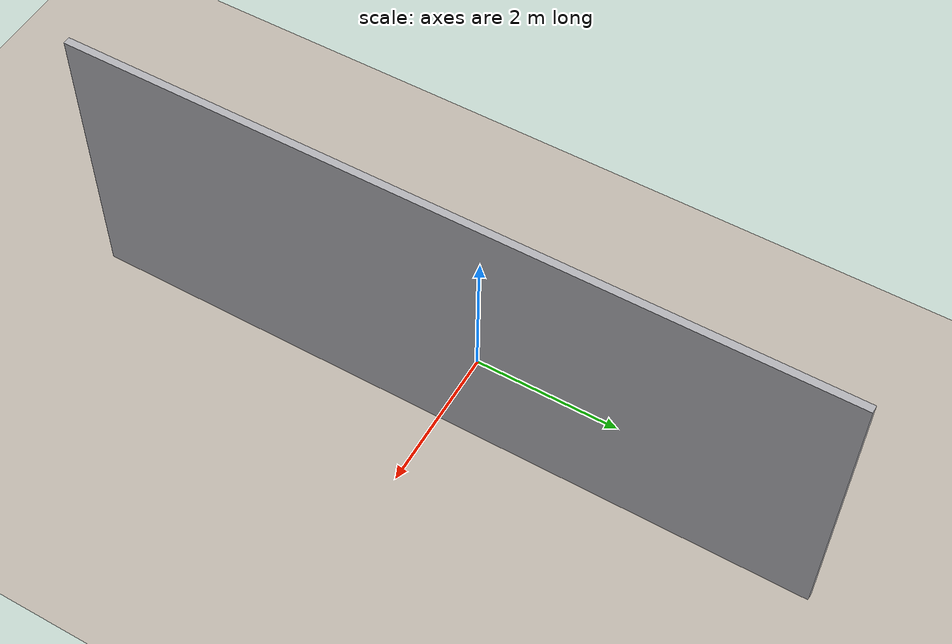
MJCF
<mujoco model="gear_lab">
    <visual>
        <headlight diffuse="0.6 0.6 0.6" ambient="0.1 0.1 0.1" specular="0.9 0.9 0.9"/>
        <rgba haze="0.15 0.25 0.35 1"/>
        <global azimuth="-140" elevation="-20"/>
    </visual>
    <asset>
        <texture type="skybox" builtin="flat" rgb1="0 0 0" rgb2="0 0 0" width="512" height="3072"/>
        <texture type="2d" name="floor" file="textures/floor.png"/>
        <texture type="cube" name="wall" file="textures/wall.png"/>
        <material name="floor" texture="floor" texuniform="true" texrepeat="3 3" reflectance="0"/>
        <!-- Use a lighter-grey wall (plain color, no dark texture) and boost
             brightness via emission so it reads as medium grey, not near-black. -->
        <material name="wall" rgba="0.70 0.70 0.72 1" emission="0.25" specular="0.1" shininess="0.1"/>
    </asset>
    <worldbody>
        <light pos="1 0 3.5" dir="0 0 -1" directional="true" castshadow="false"/>
        <geom name="floor" group="1" size="0 0 0.05" type="plane" material="floor"/>
        <geom name="wall" group="1" pos="0.9212 0 2" size="0.05 5 2" type="box" material="wall"/>
        <!-- front view -->
        <camera mode="fixed" name="frontview" pos="1.6 0 1.45" quat="0.56 0.43 0.43 0.56"/>
        <!-- bird view -->
        <camera mode="fixed" name="birdview" pos="-0.2 0 3.0" quat="0.7071 0 0 0.7071"/>
        <!-- agent view -->
        <camera mode="fixed" name="agentview" pos="0.5 0 1.35" quat="0.653 0.271 0.271 0.653"/>
        <!-- side view -->
        <camera mode="fixed" name="sideview" pos="-0.05651774593317116 1.2761224129427358 1.4879572214102434" quat="0.009905065491771751 0.006877963156909582 0.5912228352893879 0.806418094001364"/>
    </worldbody>
</mujoco>
